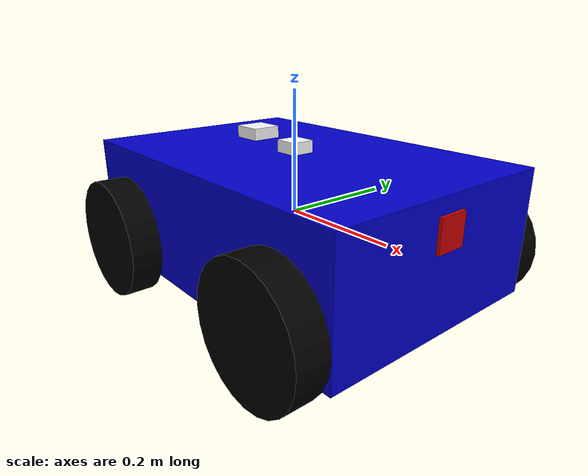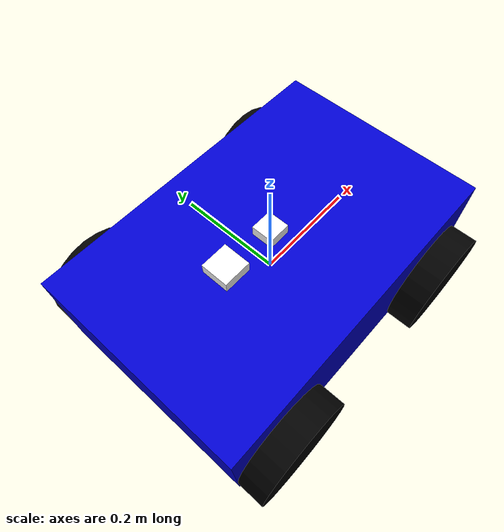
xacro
<?xml version="1.0"?>
<robot name="my_robot" xmlns:xacro="http://www.ros.org/wiki/xacro">

  <!-- ========== PROPERTIES ========== -->
  <xacro:property name="base_length" value="0.6"/>
  <xacro:property name="base_width"  value="0.4"/>
  <xacro:property name="base_height" value="0.2"/>
  <xacro:property name="wheel_radius" value="0.1"/>
  <xacro:property name="wheel_width"  value="0.05"/>

  <!-- ========== MATERIALS ========== -->
  <material name="blue">  <color rgba="0.0 0.0 0.8 1.0"/> </material>
  <material name="black"> <color rgba="0.0 0.0 0.0 1.0"/> </material>
  <material name="white"> <color rgba="1.0 1.0 1.0 1.0"/> </material>
  <material name="red">   <color rgba="0.8 0.0 0.0 1.0"/> </material>

  <!-- ========== BASE LINK ========== -->
  <link name="base_link">
    <visual>
      <geometry>
        <box size="${base_length} ${base_width} ${base_height}"/>
      </geometry>
      <material name="blue"/>
    </visual>
    <collision>
      <geometry>
        <box size="${base_length} ${base_width} ${base_height}"/>
      </geometry>
    </collision>
    <inertial>
      <mass value="5.0"/>
      <inertia ixx="0.05" ixy="0" ixz="0" iyy="0.1" iyz="0" izz="0.1"/>
    </inertial>
  </link>

  <!-- ========== WHEEL MACRO ========== -->
  <xacro:macro name="wheel" params="name x y">
    <link name="${name}_wheel">
      <visual>
        <geometry><cylinder radius="${wheel_radius}" length="${wheel_width}"/></geometry>
        <material name="black"/>
      </visual>
      <collision>
        <geometry><cylinder radius="${wheel_radius}" length="${wheel_width}"/></geometry>
      </collision>
      <inertial>
        <mass value="0.5"/>
        <inertia ixx="0.001" ixy="0" ixz="0" iyy="0.001" iyz="0" izz="0.002"/>
      </inertial>
    </link>
    <joint name="${name}_wheel_joint" type="continuous">
      <parent link="base_link"/>
      <child  link="${name}_wheel"/>
      <origin xyz="${x} ${y} -0.05" rpy="1.5708 0 0"/>
      <axis xyz="0 0 1"/>
    </joint>
  </xacro:macro>

  <xacro:wheel name="front_left"  x=" 0.2" y=" 0.225"/>
  <xacro:wheel name="front_right" x=" 0.2" y="-0.225"/>
  <xacro:wheel name="rear_left"   x="-0.2" y=" 0.225"/>
  <xacro:wheel name="rear_right"  x="-0.2" y="-0.225"/>

  <!-- ========== IMU LINK ========== -->
  <link name="imu_link">
    <visual>
      <geometry><box size="0.04 0.04 0.02"/></geometry>
      <material name="white"/>
    </visual>
    <inertial>
      <mass value="0.01"/>
      <inertia ixx="0.0001" ixy="0" ixz="0" iyy="0.0001" iyz="0" izz="0.0001"/>
    </inertial>
  </link>
  <joint name="imu_joint" type="fixed">
    <parent link="base_link"/>
    <child  link="imu_link"/>
    <origin xyz="0.0 0.0 0.11" rpy="0 0 0"/>
  </joint>

  <!-- ========== GPS LINK ========== -->
  <link name="gps_link">
    <visual>
      <geometry><box size="0.05 0.05 0.02"/></geometry>
      <material name="white"/>
    </visual>
    <inertial>
      <mass value="0.01"/>
      <inertia ixx="0.0001" ixy="0" ixz="0" iyy="0.0001" iyz="0" izz="0.0001"/>
    </inertial>
  </link>
  <joint name="gps_joint" type="fixed">
    <parent link="base_link"/>
    <child  link="gps_link"/>
    <origin xyz="-0.1 0.0 0.12" rpy="0 0 0"/>
  </joint>

  <!-- ========== CAMERA LINK ========== -->
  <link name="camera_link">
    <visual>
      <geometry><box size="0.05 0.05 0.05"/></geometry>
      <material name="red"/>
    </visual>
    <inertial>
      <mass value="0.05"/>
      <inertia ixx="0.0001" ixy="0" ixz="0" iyy="0.0001" iyz="0" izz="0.0001"/>
    </inertial>
  </link>
  <joint name="camera_joint" type="fixed">
    <parent link="base_link"/>
    <child  link="camera_link"/>
    <origin xyz="0.28 0.0 0.05" rpy="0 0 0"/>
  </joint>
  <link name="camera_optical_frame"/>
  <joint name="camera_optical_joint" type="fixed">
    <parent link="camera_link"/>
    <child  link="camera_optical_frame"/>
    <origin xyz="0 0 0" rpy="-1.5708 0 -1.5708"/>
  </joint>

  <!-- ========== GAZEBO PLUGINS ========== -->

  <!-- Differential Drive -->
  <gazebo>
    <plugin name="diff_drive" filename="libgazebo_ros_diff_drive.so">
      <ros><namespace>/robot</namespace></ros>
      <left_joint>rear_left_wheel_joint</left_joint>
      <right_joint>rear_right_wheel_joint</right_joint>
      <wheel_separation>0.45</wheel_separation>
      <wheel_diameter>0.2</wheel_diameter>
      <max_wheel_torque>20</max_wheel_torque>
      <max_wheel_acceleration>1.0</max_wheel_acceleration>
      <publish_odom>true</publish_odom>
      <publish_odom_tf>true</publish_odom_tf>
      <publish_wheel_tf>true</publish_wheel_tf>
      <odometry_frame>odom</odometry_frame>
      <robot_base_frame>base_link</robot_base_frame>
    </plugin>
  </gazebo>

  <!-- IMU -->
  <gazebo reference="imu_link">
    <sensor name="imu_sensor" type="imu">
      <always_on>true</always_on>
      <update_rate>50</update_rate>
      <plugin name="imu_plugin" filename="libgazebo_ros_imu_sensor.so">
        <ros><namespace>/robot</namespace><remapping>~/out:=imu/data</remapping></ros>
        <initial_orientation_as_reference>false</initial_orientation_as_reference>
      </plugin>
      <imu><angular_velocity><x><noise type="gaussian"><mean>0.0</mean><stddev>0.009</stddev></noise></x>
           <y><noise type="gaussian"><mean>0.0</mean><stddev>0.009</stddev></noise></y>
           <z><noise type="gaussian"><mean>0.0</mean><stddev>0.009</stddev></noise></z></angular_velocity>
        <linear_acceleration><x><noise type="gaussian"><mean>0.0</mean><stddev>0.1</stddev></noise></x>
           <y><noise type="gaussian"><mean>0.0</mean><stddev>0.1</stddev></noise></y>
           <z><noise type="gaussian"><mean>0.0</mean><stddev>0.1</stddev></noise></z></linear_acceleration>
      </imu>
    </sensor>
  </gazebo>

  <!-- GPS (NavSat) -->
  <gazebo reference="gps_link">
    <sensor name="gps_sensor" type="gps">
      <always_on>true</always_on>
      <update_rate>1</update_rate>
      <plugin name="gps_plugin" filename="libgazebo_ros_gps_sensor.so">
        <ros><namespace>/robot</namespace><remapping>~/out:=gps/fix</remapping></ros>
        <frame_name>gps_link</frame_name>
      </plugin>
    </sensor>
  </gazebo>

  <!-- Camera -->
  <gazebo reference="camera_link">
    <sensor name="camera_sensor" type="camera">
      <always_on>true</always_on>
      <update_rate>30</update_rate>
      <camera>
        <horizontal_fov>1.3962634</horizontal_fov>
        <image><width>640</width><height>480</height><format>R8G8B8</format></image>
        <clip><near>0.05</near><far>300</far></clip>
      </camera>
      <plugin name="camera_plugin" filename="libgazebo_ros_camera.so">
        <ros><namespace>/robot</namespace></ros>
        <camera_name>front_camera</camera_name>
        <frame_name>camera_optical_frame</frame_name>
        <hack_baseline>0.07</hack_baseline>
      </plugin>
    </sensor>
  </gazebo>

  <!-- Friction for wheels -->
  <gazebo reference="front_left_wheel"> <mu1>1.0</mu1><mu2>1.0</mu2></gazebo>
  <gazebo reference="front_right_wheel"><mu1>1.0</mu1><mu2>1.0</mu2></gazebo>
  <gazebo reference="rear_left_wheel">  <mu1>1.0</mu1><mu2>1.0</mu2></gazebo>
  <gazebo reference="rear_right_wheel"> <mu1>1.0</mu1><mu2>1.0</mu2></gazebo>

</robot>
